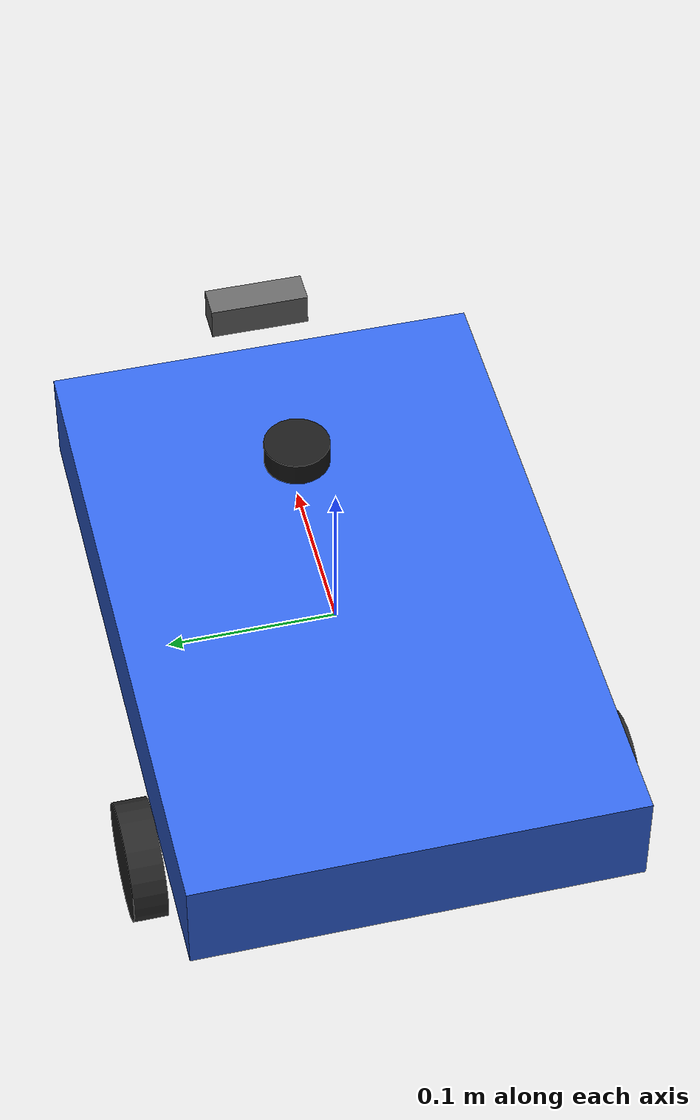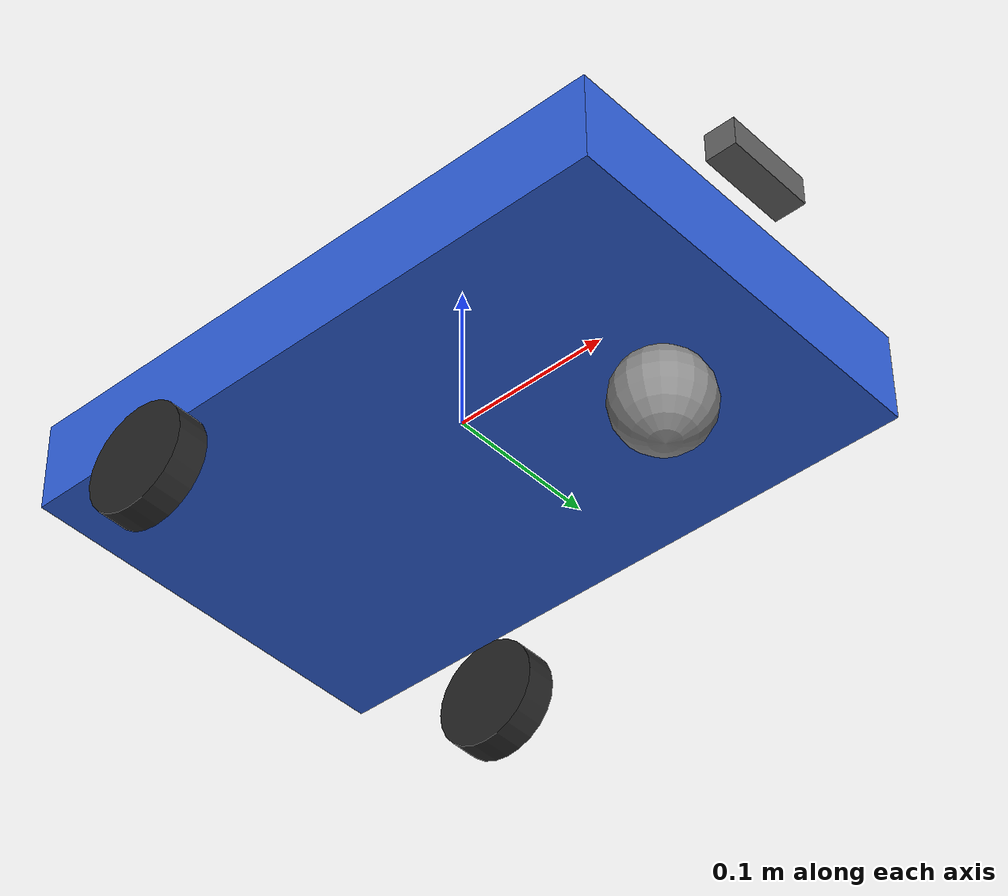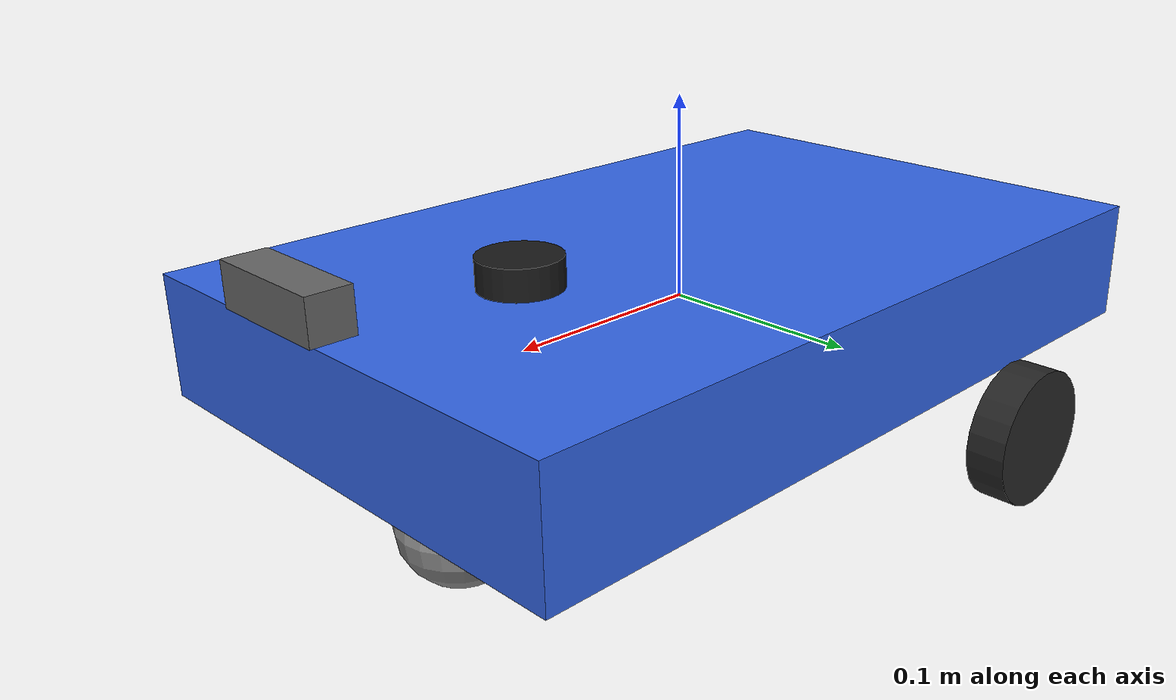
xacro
<?xml version="1.0"?>
<!-- D4 外壳：核心模型 + ros2_control 硬件接口 + gazebo_ros2_control 插件。
     与经典插件的区别：控制逻辑在 controller_manager 内（与真机同一套 ros2_control 栈），
     diff_drive_controller 自带 cmd_vel_timeout —— 修掉 D3 的"保持最后速度"缺陷 -->
<robot xmlns:xacro="http://www.ros.org/wiki/xacro" name="mybot">

  <xacro:arg name="ros2c_params_file"
             default="$(find mybot_description)/config/mybot_controllers.yaml"/>
  <xacro:arg name="extra_params_file" default="$(arg ros2c_params_file)"/>

  <xacro:include filename="$(find mybot_description)/urdf/mybot_core.urdf.xacro"/>
  <!-- D5: 传感器（激光/相机）与硬件抽象层解耦，两种驱动外壳都 include 同一份 -->
  <xacro:include filename="$(find mybot_description)/urdf/mybot_sensors.urdf.xacro"/>

  <!-- ros2_control 声明：GazeboSystem 硬件读关节状态 / 写轮速指令 -->
  <ros2_control name="GazeboSystem" type="system">
    <hardware>
      <plugin>gazebo_ros2_control/GazeboSystem</plugin>
    </hardware>
    <joint name="wheel_left_joint">
      <command_interface name="velocity">
        <param name="min">-10</param>
        <param name="max">10</param>
      </command_interface>
      <state_interface name="position"/>
      <state_interface name="velocity"/>
    </joint>
    <joint name="wheel_right_joint">
      <command_interface name="velocity">
        <param name="min">-10</param>
        <param name="max">10</param>
      </command_interface>
      <state_interface name="position"/>
      <state_interface name="velocity"/>
    </joint>
  </ros2_control>

  <gazebo>
    <plugin name="gazebo_ros2_control" filename="libgazebo_ros2_control.so">
      <parameters>$(arg ros2c_params_file)</parameters>
      <parameters>$(arg extra_params_file)</parameters>
      <controller_manager_name>controller_manager</controller_manager_name>
      <ros>
        <!-- use_stamped_vel:=false 时控制器的 Twist 输入口实际叫 cmd_vel_unstamped（D4 实测），
             重映射到 /cmd_vel 对齐 teleop/Nav2 约定 -->
        <remapping>/diff_drive_controller/cmd_vel_unstamped:=/cmd_vel</remapping>
        <remapping>/diff_drive_controller/odom:=/odom</remapping>
      </ros>
    </plugin>
  </gazebo>

</robot>

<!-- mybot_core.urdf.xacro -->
<robot xmlns:xacro="http://www.ros.org/wiki/xacro" name="mybot">

  <!-- ============ 参数表 ============ -->
  <xacro:property name="chassis_length"   value="0.40"/>
  <xacro:property name="chassis_width"    value="0.26"/>
  <xacro:property name="chassis_height"   value="0.06"/>
  <xacro:property name="chassis_mass"     value="1.0"/>

  <xacro:property name="wheel_radius"     value="0.035"/>
  <xacro:property name="wheel_width"      value="0.02"/>
  <xacro:property name="wheel_mass"       value="0.05"/>
  <xacro:property name="wheel_separation" value="0.28"/>   <!-- 左右轮心距 -->
  <xacro:property name="wheel_x_offset"   value="0.10"/>   <!-- 驱动轴在质心后方 -->
  <xacro:property name="wheel_clearance"  value="0.001"/>  <!-- 轮顶与车底留 1mm，防共面 -->

  <xacro:property name="caster_radius"    value="0.03"/>
  <xacro:property name="caster_mass"      value="0.02"/>
  <xacro:property name="caster_x_offset"  value="0.14"/>

  <!-- 派生高度：轮心 -> 地面线 -> 球心，全部由参数推导出，不再手填魔数 -->
  <xacro:property name="wheel_z"  value="${-(chassis_height/2 + wheel_radius) + wheel_clearance}"/>
  <xacro:property name="ground_z" value="${wheel_z - wheel_radius}"/>
  <xacro:property name="caster_z" value="${ground_z + caster_radius}"/>

  <!-- ============ 材质 ============ -->
  <material name="body_blue"><color rgba="0.20 0.40 0.90 1.0"/></material>
  <material name="tyre_grey"><color rgba="0.15 0.15 0.15 1.0"/></material>
  <material name="caster_grey"><color rgba="0.55 0.55 0.55 1.0"/></material>

  <!-- ============ 惯性宏 ============ -->
  <xacro:macro name="inertial_box" params="mass x y z">
    <inertial>
      <origin xyz="0 0 0"/>
      <mass value="${mass}"/>
      <inertia ixx="${mass/12.0*(y*y+z*z)}" ixy="0.0" ixz="0.0"
               iyy="${mass/12.0*(x*x+z*z)}" iyz="0.0"
               izz="${mass/12.0*(x*x+y*y)}"/>
    </inertial>
  </xacro:macro>

  <!-- 圆柱惯性在本地系（轴向 z），随 link 的 visual/collision origin 一起旋转 -->
  <xacro:macro name="inertial_cylinder" params="mass radius length">
    <inertial>
      <origin xyz="0 0 0"/>
      <mass value="${mass}"/>
      <inertia ixx="${mass/12.0*(3*radius*radius+length*length)}" ixy="0.0" ixz="0.0"
               iyy="${mass/12.0*(3*radius*radius+length*length)}" iyz="0.0"
               izz="${mass/2.0*radius*radius}"/>
    </inertial>
  </xacro:macro>

  <xacro:macro name="inertial_sphere" params="mass radius">
    <inertial>
      <origin xyz="0 0 0"/>
      <mass value="${mass}"/>
      <inertia ixx="${2.0/5.0*mass*radius*radius}" ixy="0.0" ixz="0.0"
               iyy="${2.0/5.0*mass*radius*radius}" iyz="0.0"
               izz="${2.0/5.0*mass*radius*radius}"/>
    </inertial>
  </xacro:macro>

  <!-- ============ 车体 ============ -->
  <link name="base_link">
    <visual>
      <geometry><box size="${chassis_length} ${chassis_width} ${chassis_height}"/></geometry>
      <material name="body_blue"/>
    </visual>
    <collision>
      <geometry><box size="${chassis_length} ${chassis_width} ${chassis_height}"/></geometry>
    </collision>
    <xacro:inertial_box mass="${chassis_mass}" x="${chassis_length}" y="${chassis_width}" z="${chassis_height}"/>
  </link>

  <!-- ============ 车轮宏 ============ -->
  <!-- 圆柱默认轴向 z，绕 x 转 90° 后轴朝 y（即车宽方向），与 joint axis (0 1 0) 匹配 -->
  <xacro:macro name="wheel" params="prefix y_sign">
    <link name="wheel_${prefix}_link">
      <visual>
        <origin xyz="0 0 0" rpy="${pi/2} 0 0"/>
        <geometry><cylinder radius="${wheel_radius}" length="${wheel_width}"/></geometry>
        <material name="tyre_grey"/>
      </visual>
      <collision>
        <origin xyz="0 0 0" rpy="${pi/2} 0 0"/>
        <geometry><cylinder radius="${wheel_radius}" length="${wheel_width}"/></geometry>
      </collision>
      <xacro:inertial_cylinder mass="${wheel_mass}" radius="${wheel_radius}" length="${wheel_width}"/>
    </link>

    <joint name="wheel_${prefix}_joint" type="continuous">
      <parent link="base_link"/>
      <child link="wheel_${prefix}_link"/>
      <origin xyz="${-wheel_x_offset} ${y_sign*wheel_separation/2} ${wheel_z}" rpy="0 0 0"/>
      <axis xyz="0 1 0"/>
    </joint>
  </xacro:macro>

  <xacro:wheel prefix="left"  y_sign="${1}"/>
  <xacro:wheel prefix="right" y_sign="${-1}"/>

  <!-- ============ 前端 caster 万向球 ============ -->
  <link name="caster_link">
    <visual>
      <geometry><sphere radius="${caster_radius}"/></geometry>
      <material name="caster_grey"/>
    </visual>
    <collision>
      <geometry><sphere radius="${caster_radius}"/></geometry>
    </collision>
    <xacro:inertial_sphere mass="${caster_mass}" radius="${caster_radius}"/>
  </link>

  <joint name="caster_joint" type="fixed">
    <parent link="base_link"/>
    <child link="caster_link"/>
    <origin xyz="${caster_x_offset} 0 ${caster_z}" rpy="0 0 0"/>
  </joint>

  <!-- ============ 传感器挂载点（D5 占位） ============ -->
  <link name="laser_link"/>
  <joint name="laser_joint" type="fixed">
    <parent link="base_link"/>
    <child link="laser_link"/>
    <origin xyz="0.10 0 0.035" rpy="0 0 0"/>
  </joint>

  <link name="camera_link"/>
  <xacro:property name="camera_x" value="0.21"/>
  <xacro:property name="camera_z" value="0.055"/>
  <xacro:arg name="camera_pitch" default="0.0"/>
  <joint name="camera_joint" type="fixed">
    <parent link="base_link"/>
    <child link="camera_link"/>
    <origin xyz="${camera_x} 0 ${camera_z}" rpy="0 $(arg camera_pitch) 0"/>
  </joint>

  <!-- ============ Gazebo 物理与差速驱动插件（D3） ============ -->
  <!-- 材质与摩擦：驱动轮高摩擦抓地，caster 近零摩擦模拟万向轮 -->
  <gazebo reference="base_link">
    <material>Gazebo/Blue</material>
  </gazebo>
  <gazebo reference="wheel_left_link">
    <material>Gazebo/FlatBlack</material>
    <mu1>1.5</mu1><mu2>1.5</mu2>
    <kp>1000000.0</kp><kd>100.0</kd>
    <minDepth>0.001</minDepth>
  </gazebo>
  <gazebo reference="wheel_right_link">
    <material>Gazebo/FlatBlack</material>
    <mu1>1.5</mu1><mu2>1.5</mu2>
    <kp>1000000.0</kp><kd>100.0</kd>
    <minDepth>0.001</minDepth>
  </gazebo>
  <gazebo reference="caster_link">
    <material>Gazebo/Grey</material>
    <mu1>0.001</mu1><mu2>0.001</mu2>
  </gazebo>

</robot>

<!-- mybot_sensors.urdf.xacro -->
<robot xmlns:xacro="http://www.ros.org/wiki/xacro">

  <!-- ============ 光学科学生产坐标约定：x=右, y=下, z=前（REP-103） ============ -->
  <link name="camera_link_optical"/>
  <joint name="camera_optical_joint" type="fixed">
    <parent link="camera_link"/>
    <child link="camera_link_optical"/>
    <origin xyz="0 0 0" rpy="${-pi/2} 0 ${-pi/2}"/>
  </joint>

  <!-- ============ 2D 激光雷达 (laser_link 挂点：xyz=0.10 0 0.035) ============ -->
  <gazebo reference="laser_link">
    <material>Gazebo/Black</material>
    <sensor type="ray" name="mybot_lidar">
      <pose>0 0 0 0 0 0</pose>
      <visualize>false</visualize>
      <update_rate>5</update_rate>
      <ray>
        <scan>
          <horizontal>
            <samples>360</samples>
            <resolution>1</resolution>
            <min_angle>${-pi}</min_angle>
            <max_angle>${pi}</max_angle>
          </horizontal>
        </scan>
        <range>
          <min>0.12</min>
          <max>8.0</max>
          <resolution>0.015</resolution>
        </range>
        <noise>
          <type>gaussian</type>
          <mean>0.0</mean>
          <stddev>0.01</stddev>
        </noise>
      </ray>
      <!-- gazebo_ros_ray_sensor 在 Humble 直接以 LaserScan 消息发布，无需额外转换节点 -->
      <plugin name="gazebo_ros_lidar" filename="libgazebo_ros_ray_sensor.so">
        <ros>
          <remapping>~/out:=/scan</remapping>
        </ros>
        <output_type>sensor_msgs/LaserScan</output_type>
        <frame_name>laser_link</frame_name>
      </plugin>
    </sensor>
  </gazebo>

  <!-- ============ 摄像头 (camera_link 挂点：xyz=0.21 0 0.055，D7 起) ============ -->
  <!-- D8：update_rate 抽成 arg。注意 Gazebo 的传感器限频是按**仿真时间**算的，
       所以墙上实测频率 = update_rate × RTF；RTF 0.5 时 15Hz 只出 7.5 张/秒。
       默认 15.0 保持 D5/D7 口径，慢仿真下要提帧率就 camera_rate:=30 起步。 -->
  <xacro:arg name="camera_rate" default="15.0"/>
  <gazebo reference="camera_link">
    <material>Gazebo/DarkGrey</material>
    <sensor type="camera" name="mybot_camera">
      <update_rate>$(arg camera_rate)</update_rate>
      <camera name="head">
        <horizontal_fov>1.2</horizontal_fov>
        <image>
          <width>320</width>
          <height>240</height>
          <format>R8G8B8</format>
        </image>
        <clip>
          <near>0.03</near>
          <far>10.0</far>
        </clip>
      </camera>
      <plugin name="gazebo_ros_camera" filename="libgazebo_ros_camera.so">
        <!-- 未 remap 时话题默认 /mybot_cam/{image_raw,camera_info}；remap 到 /camera/* 便于 rviz2 与后续 OpenCV 订阅。 -->
        <ros>
          <remapping>mybot_cam/image_raw:=/camera/image_raw</remapping>
          <remapping>mybot_cam/camera_info:=/camera/camera_info</remapping>
        </ros>
        <camera_name>mybot_cam</camera_name>
        <frame_name>camera_link_optical</frame_name>
      </plugin>
    </sensor>
  </gazebo>

  <!-- 让 URDF 层有一小块可见体积，方便 RViz 里确认挂载点（不影响 Gazebo 物理，无 collision） -->
  <link name="laser_link_visual">
    <visual>
      <geometry><cylinder radius="0.02" length="0.02"/></geometry>
      <material name="lidar_black"><color rgba="0.1 0.1 0.1 1"/></material>
    </visual>
  </link>
  <joint name="laser_visual_joint" type="fixed">
    <parent link="laser_link"/>
    <child link="laser_link_visual"/>
    <origin xyz="0 0 0" rpy="0 0 0"/>
  </joint>

  <link name="camera_link_visual">
    <visual>
      <geometry><box size="0.02 0.06 0.02"/></geometry>
      <material name="cam_grey"><color rgba="0.4 0.4 0.4 1"/></material>
    </visual>
  </link>
  <joint name="camera_visual_joint" type="fixed">
    <parent link="camera_link"/>
    <child link="camera_link_visual"/>
    <origin xyz="0 0 0" rpy="0 0 0"/>
  </joint>

</robot>
